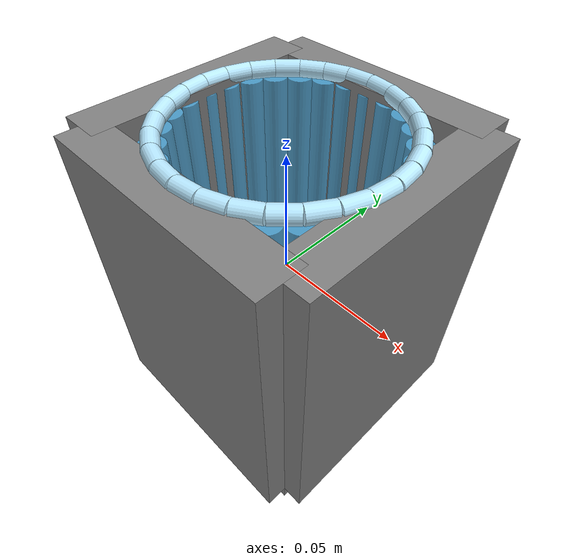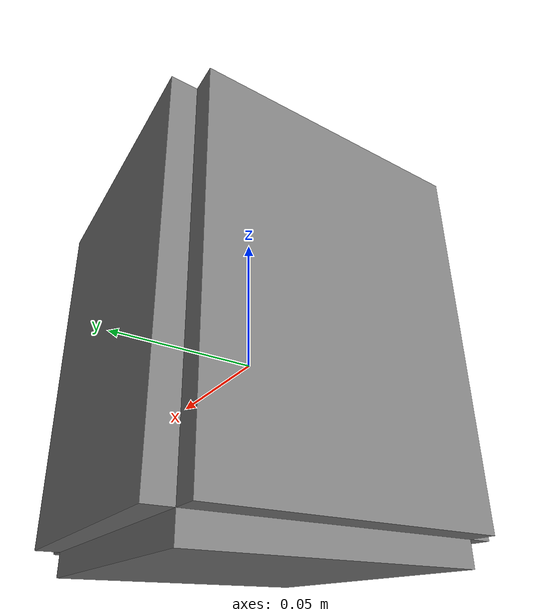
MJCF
<mujoco model="vla82_vla82_058__mouthwash_cup">
  <compiler angle="radian"/>
  <asset>
    <texture name="source_texture" type="2d" file="source_texture.png"/>
    <material name="source_material" texture="source_texture" rgba="1 1 1 1"/>
  </asset>
  <default>
    <default class="visual"><geom contype="0" conaffinity="0" group="1"/></default>
    <default class="collision"><geom contype="1" conaffinity="1" group="0" density="300" friction="0.55 0.005 0.0002" solref="0.02 1" solimp="0.9 0.95 0.001"/></default>
    <default class="region"><geom contype="0" conaffinity="0" group="1" rgba="0 1 0 0" mass="0"/></default>
  </default>
  <worldbody><body><body name="object">
    <geom name="cup_bottom_visual" class="visual" type="cylinder" pos="0 0 -0.057000" size="0.045000 0.004" rgba="0.18 0.58 0.86 0.95"/>
    <geom name="cup_wall_visual_0" class="visual" type="cylinder" pos="0.041000 0.000000 0.002500" size="0.0046 0.054500" rgba="0.32 0.72 0.94 0.78"/>
    <geom name="cup_wall_visual_1" class="visual" type="cylinder" pos="0.039972 0.009123 0.002500" size="0.0046 0.054500" rgba="0.32 0.72 0.94 0.78"/>
    <geom name="cup_wall_visual_2" class="visual" type="cylinder" pos="0.036940 0.017789 0.002500" size="0.0046 0.054500" rgba="0.32 0.72 0.94 0.78"/>
    <geom name="cup_wall_visual_3" class="visual" type="cylinder" pos="0.032055 0.025563 0.002500" size="0.0046 0.054500" rgba="0.32 0.72 0.94 0.78"/>
    <geom name="cup_wall_visual_4" class="visual" type="cylinder" pos="0.025563 0.032055 0.002500" size="0.0046 0.054500" rgba="0.32 0.72 0.94 0.78"/>
    <geom name="cup_wall_visual_5" class="visual" type="cylinder" pos="0.017789 0.036940 0.002500" size="0.0046 0.054500" rgba="0.32 0.72 0.94 0.78"/>
    <geom name="cup_wall_visual_6" class="visual" type="cylinder" pos="0.009123 0.039972 0.002500" size="0.0046 0.054500" rgba="0.32 0.72 0.94 0.78"/>
    <geom name="cup_wall_visual_7" class="visual" type="cylinder" pos="0.000000 0.041000 0.002500" size="0.0046 0.054500" rgba="0.32 0.72 0.94 0.78"/>
    <geom name="cup_wall_visual_8" class="visual" type="cylinder" pos="-0.009123 0.039972 0.002500" size="0.0046 0.054500" rgba="0.32 0.72 0.94 0.78"/>
    <geom name="cup_wall_visual_9" class="visual" type="cylinder" pos="-0.017789 0.036940 0.002500" size="0.0046 0.054500" rgba="0.32 0.72 0.94 0.78"/>
    <geom name="cup_wall_visual_10" class="visual" type="cylinder" pos="-0.025563 0.032055 0.002500" size="0.0046 0.054500" rgba="0.32 0.72 0.94 0.78"/>
    <geom name="cup_wall_visual_11" class="visual" type="cylinder" pos="-0.032055 0.025563 0.002500" size="0.0046 0.054500" rgba="0.32 0.72 0.94 0.78"/>
    <geom name="cup_wall_visual_12" class="visual" type="cylinder" pos="-0.036940 0.017789 0.002500" size="0.0046 0.054500" rgba="0.32 0.72 0.94 0.78"/>
    <geom name="cup_wall_visual_13" class="visual" type="cylinder" pos="-0.039972 0.009123 0.002500" size="0.0046 0.054500" rgba="0.32 0.72 0.94 0.78"/>
    <geom name="cup_wall_visual_14" class="visual" type="cylinder" pos="-0.041000 0.000000 0.002500" size="0.0046 0.054500" rgba="0.32 0.72 0.94 0.78"/>
    <geom name="cup_wall_visual_15" class="visual" type="cylinder" pos="-0.039972 -0.009123 0.002500" size="0.0046 0.054500" rgba="0.32 0.72 0.94 0.78"/>
    <geom name="cup_wall_visual_16" class="visual" type="cylinder" pos="-0.036940 -0.017789 0.002500" size="0.0046 0.054500" rgba="0.32 0.72 0.94 0.78"/>
    <geom name="cup_wall_visual_17" class="visual" type="cylinder" pos="-0.032055 -0.025563 0.002500" size="0.0046 0.054500" rgba="0.32 0.72 0.94 0.78"/>
    <geom name="cup_wall_visual_18" class="visual" type="cylinder" pos="-0.025563 -0.032055 0.002500" size="0.0046 0.054500" rgba="0.32 0.72 0.94 0.78"/>
    <geom name="cup_wall_visual_19" class="visual" type="cylinder" pos="-0.017789 -0.036940 0.002500" size="0.0046 0.054500" rgba="0.32 0.72 0.94 0.78"/>
    <geom name="cup_wall_visual_20" class="visual" type="cylinder" pos="-0.009123 -0.039972 0.002500" size="0.0046 0.054500" rgba="0.32 0.72 0.94 0.78"/>
    <geom name="cup_wall_visual_21" class="visual" type="cylinder" pos="-0.000000 -0.041000 0.002500" size="0.0046 0.054500" rgba="0.32 0.72 0.94 0.78"/>
    <geom name="cup_wall_visual_22" class="visual" type="cylinder" pos="0.009123 -0.039972 0.002500" size="0.0046 0.054500" rgba="0.32 0.72 0.94 0.78"/>
    <geom name="cup_wall_visual_23" class="visual" type="cylinder" pos="0.017789 -0.036940 0.002500" size="0.0046 0.054500" rgba="0.32 0.72 0.94 0.78"/>
    <geom name="cup_wall_visual_24" class="visual" type="cylinder" pos="0.025563 -0.032055 0.002500" size="0.0046 0.054500" rgba="0.32 0.72 0.94 0.78"/>
    <geom name="cup_wall_visual_25" class="visual" type="cylinder" pos="0.032055 -0.025563 0.002500" size="0.0046 0.054500" rgba="0.32 0.72 0.94 0.78"/>
    <geom name="cup_wall_visual_26" class="visual" type="cylinder" pos="0.036940 -0.017789 0.002500" size="0.0046 0.054500" rgba="0.32 0.72 0.94 0.78"/>
    <geom name="cup_wall_visual_27" class="visual" type="cylinder" pos="0.039972 -0.009123 0.002500" size="0.0046 0.054500" rgba="0.32 0.72 0.94 0.78"/>
    <geom name="cup_rim_visual_0" class="visual" type="cylinder" pos="0.040486 0.004562 0.060000" size="0.0030 0.004591" quat="0.7071068 -0.7026607 -0.0791708 0" rgba="0.72 0.91 1.00 1"/>
    <geom name="cup_rim_visual_1" class="visual" type="cylinder" pos="0.038456 0.013456 0.060000" size="0.0030 0.004591" quat="0.7071068 -0.6674263 -0.2335426 0" rgba="0.72 0.91 1.00 1"/>
    <geom name="cup_rim_visual_2" class="visual" type="cylinder" pos="0.034497 0.021676 0.060000" size="0.0030 0.004591" quat="0.7071068 -0.5987244 -0.3762035 0" rgba="0.72 0.91 1.00 1"/>
    <geom name="cup_rim_visual_3" class="visual" type="cylinder" pos="0.028809 0.028809 0.060000" size="0.0030 0.004591" quat="0.7071068 -0.5000000 -0.5000000 0" rgba="0.72 0.91 1.00 1"/>
    <geom name="cup_rim_visual_4" class="visual" type="cylinder" pos="0.021676 0.034497 0.060000" size="0.0030 0.004591" quat="0.7071068 -0.3762035 -0.5987244 0" rgba="0.72 0.91 1.00 1"/>
    <geom name="cup_rim_visual_5" class="visual" type="cylinder" pos="0.013456 0.038456 0.060000" size="0.0030 0.004591" quat="0.7071068 -0.2335426 -0.6674263 0" rgba="0.72 0.91 1.00 1"/>
    <geom name="cup_rim_visual_6" class="visual" type="cylinder" pos="0.004562 0.040486 0.060000" size="0.0030 0.004591" quat="0.7071068 -0.0791708 -0.7026607 0" rgba="0.72 0.91 1.00 1"/>
    <geom name="cup_rim_visual_7" class="visual" type="cylinder" pos="-0.004562 0.040486 0.060000" size="0.0030 0.004591" quat="0.7071068 0.0791708 -0.7026607 0" rgba="0.72 0.91 1.00 1"/>
    <geom name="cup_rim_visual_8" class="visual" type="cylinder" pos="-0.013456 0.038456 0.060000" size="0.0030 0.004591" quat="0.7071068 0.2335426 -0.6674263 0" rgba="0.72 0.91 1.00 1"/>
    <geom name="cup_rim_visual_9" class="visual" type="cylinder" pos="-0.021676 0.034497 0.060000" size="0.0030 0.004591" quat="0.7071068 0.3762035 -0.5987244 0" rgba="0.72 0.91 1.00 1"/>
    <geom name="cup_rim_visual_10" class="visual" type="cylinder" pos="-0.028809 0.028809 0.060000" size="0.0030 0.004591" quat="0.7071068 0.5000000 -0.5000000 0" rgba="0.72 0.91 1.00 1"/>
    <geom name="cup_rim_visual_11" class="visual" type="cylinder" pos="-0.034497 0.021676 0.060000" size="0.0030 0.004591" quat="0.7071068 0.5987244 -0.3762035 0" rgba="0.72 0.91 1.00 1"/>
    <geom name="cup_rim_visual_12" class="visual" type="cylinder" pos="-0.038456 0.013456 0.060000" size="0.0030 0.004591" quat="0.7071068 0.6674263 -0.2335426 0" rgba="0.72 0.91 1.00 1"/>
    <geom name="cup_rim_visual_13" class="visual" type="cylinder" pos="-0.040486 0.004562 0.060000" size="0.0030 0.004591" quat="0.7071068 0.7026607 -0.0791708 0" rgba="0.72 0.91 1.00 1"/>
    <geom name="cup_rim_visual_14" class="visual" type="cylinder" pos="-0.040486 -0.004562 0.060000" size="0.0030 0.004591" quat="0.7071068 0.7026607 0.0791708 0" rgba="0.72 0.91 1.00 1"/>
    <geom name="cup_rim_visual_15" class="visual" type="cylinder" pos="-0.038456 -0.013456 0.060000" size="0.0030 0.004591" quat="0.7071068 0.6674263 0.2335426 0" rgba="0.72 0.91 1.00 1"/>
    <geom name="cup_rim_visual_16" class="visual" type="cylinder" pos="-0.034497 -0.021676 0.060000" size="0.0030 0.004591" quat="0.7071068 0.5987244 0.3762035 0" rgba="0.72 0.91 1.00 1"/>
    <geom name="cup_rim_visual_17" class="visual" type="cylinder" pos="-0.028809 -0.028809 0.060000" size="0.0030 0.004591" quat="0.7071068 0.5000000 0.5000000 0" rgba="0.72 0.91 1.00 1"/>
    <geom name="cup_rim_visual_18" class="visual" type="cylinder" pos="-0.021676 -0.034497 0.060000" size="0.0030 0.004591" quat="0.7071068 0.3762035 0.5987244 0" rgba="0.72 0.91 1.00 1"/>
    <geom name="cup_rim_visual_19" class="visual" type="cylinder" pos="-0.013456 -0.038456 0.060000" size="0.0030 0.004591" quat="0.7071068 0.2335426 0.6674263 0" rgba="0.72 0.91 1.00 1"/>
    <geom name="cup_rim_visual_20" class="visual" type="cylinder" pos="-0.004562 -0.040486 0.060000" size="0.0030 0.004591" quat="0.7071068 0.0791708 0.7026607 0" rgba="0.72 0.91 1.00 1"/>
    <geom name="cup_rim_visual_21" class="visual" type="cylinder" pos="0.004562 -0.040486 0.060000" size="0.0030 0.004591" quat="0.7071068 -0.0791708 0.7026607 0" rgba="0.72 0.91 1.00 1"/>
    <geom name="cup_rim_visual_22" class="visual" type="cylinder" pos="0.013456 -0.038456 0.060000" size="0.0030 0.004591" quat="0.7071068 -0.2335426 0.6674263 0" rgba="0.72 0.91 1.00 1"/>
    <geom name="cup_rim_visual_23" class="visual" type="cylinder" pos="0.021676 -0.034497 0.060000" size="0.0030 0.004591" quat="0.7071068 -0.3762035 0.5987244 0" rgba="0.72 0.91 1.00 1"/>
    <geom name="cup_rim_visual_24" class="visual" type="cylinder" pos="0.028809 -0.028809 0.060000" size="0.0030 0.004591" quat="0.7071068 -0.5000000 0.5000000 0" rgba="0.72 0.91 1.00 1"/>
    <geom name="cup_rim_visual_25" class="visual" type="cylinder" pos="0.034497 -0.021676 0.060000" size="0.0030 0.004591" quat="0.7071068 -0.5987244 0.3762035 0" rgba="0.72 0.91 1.00 1"/>
    <geom name="cup_rim_visual_26" class="visual" type="cylinder" pos="0.038456 -0.013456 0.060000" size="0.0030 0.004591" quat="0.7071068 -0.6674263 0.2335426 0" rgba="0.72 0.91 1.00 1"/>
    <geom name="cup_rim_visual_27" class="visual" type="cylinder" pos="0.040486 -0.004562 0.060000" size="0.0030 0.004591" quat="0.7071068 -0.7026607 0.0791708 0" rgba="0.72 0.91 1.00 1"/>
    <geom name="collision_bottom" class="collision" type="box" pos="0 0 -0.060000" size="0.045000 0.045000 0.008"/>
    <geom name="collision_front" class="collision" type="box" pos="0 -0.045000 0" size="0.045000 0.008 0.060000"/>
    <geom name="collision_back" class="collision" type="box" pos="0 0.045000 0" size="0.045000 0.008 0.060000"/>
    <geom name="collision_left" class="collision" type="box" pos="-0.045000 0 0" size="0.008 0.045000 0.060000"/>
    <geom name="collision_right" class="collision" type="box" pos="0.045000 0 0" size="0.008 0.045000 0.060000"/>
    <geom name="reg_bbox" class="region" type="box" pos="0 0 0" size="0.045000 0.045000 0.060000"/>
  </body></body></worldbody>
  <actuator/>
</mujoco>
